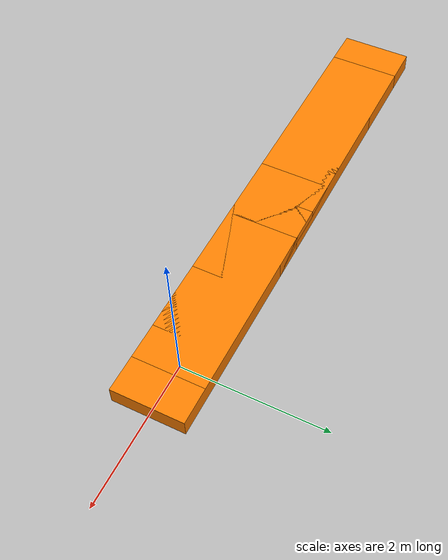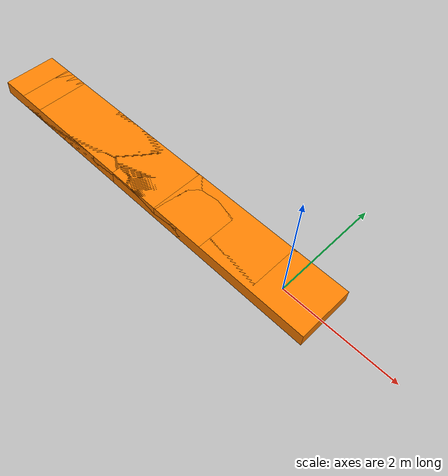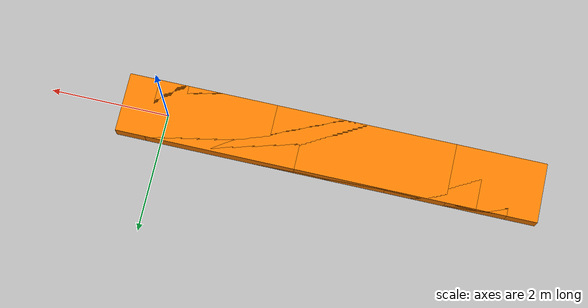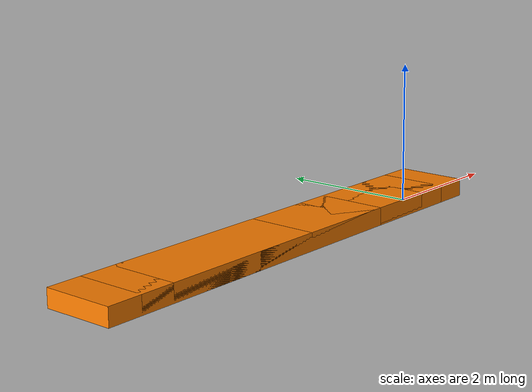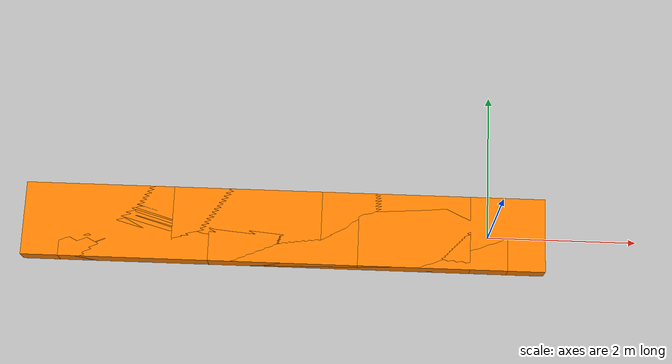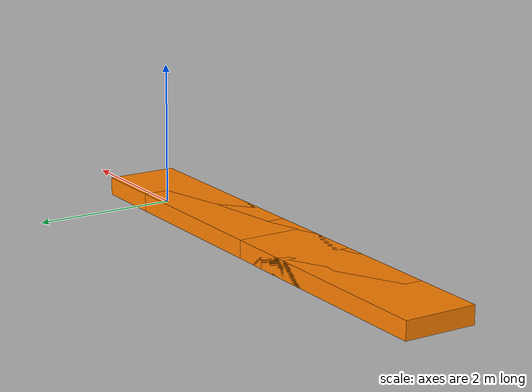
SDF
<sdf version="1.6">
 <world name="waves">
  <plugin filename="gz-sim-physics-system" name="gz::sim::systems::Physics"/>
  <plugin filename="gz-sim-sensors-system" name="gz::sim::systems::Sensors">
   <render_engine>ogre2</render_engine>
   <background_color>0.8 0.8 0.8</background_color>
  </plugin>
  <plugin filename="gz-sim-scene-broadcaster-system" name="gz::sim::systems::SceneBroadcaster"/>
  <plugin filename="gz-sim-user-commands-system" name="gz::sim::systems::UserCommands"/>
  <plugin filename="gz-sim-imu-system" name="gz::sim::systems::Imu"/>
  <plugin filename="gz-sim-navsat-system" name="gz::sim::systems::NavSat"/>
  <spherical_coordinates>
   <surface_model>EARTH_WGS84</surface_model>
   <world_frame_orientation>ENU</world_frame_orientation>
   <latitude_deg>-22.986687</latitude_deg>
   <longitude_deg>-43.202501</longitude_deg>
   <elevation>0</elevation>
   <heading_deg>0</heading_deg>
  </spherical_coordinates>
  <scene><ambient>1.0 1.0 1.0</ambient><background>0.8 0.8 0.8</background></scene>
  <light type="directional" name="sun">
   <pose>0 0 10 0 0 0</pose>
   <diffuse>0.8 0.8 0.8 1</diffuse>
   <specular>0.6 0.6 0.6 1</specular>
   <direction>-0.5 0.1 -0.9</direction>
  </light>
  <include><uri>model://waves</uri></include>
  <include><pose>-0.5 0 0 0 0 0</pose><uri>model://barrage_buoy</uri><name>barrage_buoy_1</name></include>
  <joint name="blueboat_to_barragebuoy1_joint" type="fixed">
   <parent>blueboat::base_link</parent>
   <child>barrage_buoy_1::base_link</child>
  </joint>
  <include><pose>-1.0 0 0 0 0 0</pose><uri>model://barrage_buoy</uri><name>barrage_buoy_2</name></include>
  <joint name="barragebuoy1_to_barragebuoy2_joint" type="universal">
   <parent>barrage_buoy_1::base_link</parent>
   <child>barrage_buoy_2::base_link</child>
   <axis>
    <xyz>0 1 0</xyz>
    <limit><lower>-1.5</lower><upper>1.5</upper></limit>
    <dynamics><damping>0.05</damping></dynamics>
   </axis>
   <axis2>
    <xyz>1 0 0</xyz>
    <limit><lower>-1.5</lower><upper>1.5</upper></limit>
    <dynamics><damping>0.05</damping></dynamics>
   </axis2>
  </joint>
  <include><pose>-1.5 0 0 0 0 0</pose><uri>model://barrage_buoy</uri><name>barrage_buoy_3</name></include>
  <joint name="barragebuoy2_to_barragebuoy3_joint" type="universal">
   <parent>barrage_buoy_2::base_link</parent>
   <child>barrage_buoy_3::base_link</child>
   <axis>
    <xyz>0 1 0</xyz>
    <limit><lower>-1.5</lower><upper>1.5</upper></limit>
    <dynamics><damping>0.05</damping></dynamics>
   </axis>
   <axis2>
    <xyz>1 0 0</xyz>
    <limit><lower>-1.5</lower><upper>1.5</upper></limit>
    <dynamics><damping>0.05</damping></dynamics>
   </axis2>
  </joint>
  <include><pose>-2.0 0 0 0 0 0</pose><uri>model://barrage_buoy</uri><name>barrage_buoy_4</name></include>
  <joint name="barragebuoy3_to_barragebuoy4_joint" type="universal">
   <parent>barrage_buoy_3::base_link</parent>
   <child>barrage_buoy_4::base_link</child>
   <axis>
    <xyz>0 1 0</xyz>
    <limit><lower>-1.5</lower><upper>1.5</upper></limit>
    <dynamics><damping>0.05</damping></dynamics>
   </axis>
   <axis2>
    <xyz>1 0 0</xyz>
    <limit><lower>-1.5</lower><upper>1.5</upper></limit>
    <dynamics><damping>0.05</damping></dynamics>
   </axis2>
  </joint>
  <include><pose>-2.5 0 0 0 0 0</pose><uri>model://barrage_buoy</uri><name>barrage_buoy_5</name></include>
  <joint name="barragebuoy4_to_barragebuoy5_joint" type="universal">
   <parent>barrage_buoy_4::base_link</parent>
   <child>barrage_buoy_5::base_link</child>
   <axis>
    <xyz>0 1 0</xyz>
    <limit><lower>-1.5</lower><upper>1.5</upper></limit>
    <dynamics><damping>0.05</damping></dynamics>
   </axis>
   <axis2>
    <xyz>1 0 0</xyz>
    <limit><lower>-1.5</lower><upper>1.5</upper></limit>
    <dynamics><damping>0.05</damping></dynamics>
   </axis2>
  </joint>
  <include><pose>-3.0 0 0 0 0 0</pose><uri>model://barrage_buoy</uri><name>barrage_buoy_6</name></include>
  <joint name="barragebuoy5_to_barragebuoy6_joint" type="universal">
   <parent>barrage_buoy_5::base_link</parent>
   <child>barrage_buoy_6::base_link</child>
   <axis>
    <xyz>0 1 0</xyz>
    <limit><lower>-1.5</lower><upper>1.5</upper></limit>
    <dynamics><damping>0.05</damping></dynamics>
   </axis>
   <axis2>
    <xyz>1 0 0</xyz>
    <limit><lower>-1.5</lower><upper>1.5</upper></limit>
    <dynamics><damping>0.05</damping></dynamics>
   </axis2>
  </joint>
  <include><pose>-3.5 0 0 0 0 0</pose><uri>model://barrage_buoy</uri><name>barrage_buoy_7</name></include>
  <joint name="barragebuoy6_to_barragebuoy7_joint" type="universal">
   <parent>barrage_buoy_6::base_link</parent>
   <child>barrage_buoy_7::base_link</child>
   <axis>
    <xyz>0 1 0</xyz>
    <limit><lower>-1.5</lower><upper>1.5</upper></limit>
    <dynamics><damping>0.05</damping></dynamics>
   </axis>
   <axis2>
    <xyz>1 0 0</xyz>
    <limit><lower>-1.5</lower><upper>1.5</upper></limit>
    <dynamics><damping>0.05</damping></dynamics>
   </axis2>
  </joint>
  <include><pose>-4.0 0 0 0 0 0</pose><uri>model://barrage_buoy</uri><name>barrage_buoy_8</name></include>
  <joint name="barragebuoy7_to_barragebuoy8_joint" type="universal">
   <parent>barrage_buoy_7::base_link</parent>
   <child>barrage_buoy_8::base_link</child>
   <axis>
    <xyz>0 1 0</xyz>
    <limit><lower>-1.5</lower><upper>1.5</upper></limit>
    <dynamics><damping>0.05</damping></dynamics>
   </axis>
   <axis2>
    <xyz>1 0 0</xyz>
    <limit><lower>-1.5</lower><upper>1.5</upper></limit>
    <dynamics><damping>0.05</damping></dynamics>
   </axis2>
  </joint>
  <include><pose>-4.5 0 0 0 0 0</pose><uri>model://barrage_buoy</uri><name>barrage_buoy_9</name></include>
  <joint name="barragebuoy8_to_barragebuoy9_joint" type="universal">
   <parent>barrage_buoy_8::base_link</parent>
   <child>barrage_buoy_9::base_link</child>
   <axis>
    <xyz>0 1 0</xyz>
    <limit><lower>-1.5</lower><upper>1.5</upper></limit>
    <dynamics><damping>0.05</damping></dynamics>
   </axis>
   <axis2>
    <xyz>1 0 0</xyz>
    <limit><lower>-1.5</lower><upper>1.5</upper></limit>
    <dynamics><damping>0.05</damping></dynamics>
   </axis2>
  </joint>
  <include><pose>-5.0 0 0 0 0 0</pose><uri>model://barrage_buoy</uri><name>barrage_buoy_10</name></include>
  <joint name="barragebuoy9_to_barragebuoy10_joint" type="universal">
   <parent>barrage_buoy_9::base_link</parent>
   <child>barrage_buoy_10::base_link</child>
   <axis>
    <xyz>0 1 0</xyz>
    <limit><lower>-1.5</lower><upper>1.5</upper></limit>
    <dynamics><damping>0.05</damping></dynamics>
   </axis>
   <axis2>
    <xyz>1 0 0</xyz>
    <limit><lower>-1.5</lower><upper>1.5</upper></limit>
    <dynamics><damping>0.05</damping></dynamics>
   </axis2>
  </joint>
  <include><pose>-5.5 0 -0.3 0 0 0</pose><uri>model://bluerov2_heavy</uri><name>bluerov2_heavy</name></include>
  <joint name="barragebuoy10_to_bluerov2_joint" type="universal">
   <parent>barrage_buoy_10::base_link</parent>
   <child>bluerov2_heavy::base_link</child>
   <pose>0 0 -0.3 0 0 0</pose>
   <axis>
    <xyz>0 1 0</xyz>
    <limit><lower>-1.5</lower><upper>1.5</upper></limit>
    <dynamics><damping>0.05</damping></dynamics>
   </axis>
   <axis2>
    <xyz>1 0 0</xyz>
    <limit><lower>-1.5</lower><upper>1.5</upper></limit>
    <dynamics><damping>0.05</damping></dynamics>
   </axis2>
  </joint>
 </world>
</sdf>

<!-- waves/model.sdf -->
<sdf version="1.6">
  <model name="waves">
    <static>true</static>
    <link name="link">
      <visual name= "wave_visual">
        <geometry>
          <mesh>
            <uri>meshes/mesh.dae</uri>
          </mesh>
        </geometry>
        <plugin
            filename="libWaveVisual.so"
            name="ignition::gazebo::systems::WaveVisual">
          <shader>
            <vertex>materials/programs/GerstnerWaves_vs_330.glsl</vertex>
            <fragment>materials/programs/GerstnerWaves_fs_330.glsl</fragment>
          </shader>
          <wavefield>
            <size>1000 1000</size>
            <cell_count>50 50</cell_count>
            <wave>
              <model>PMS</model>
              <period>5</period>
              <number>3</number>
              <scale>5.1</scale>
              <gain>0.3</gain>
              <direction>1 0</direction>
              <angle>0.4</angle>
              <tau>2.0</tau>
              <amplitude>0.0</amplitude>
              <steepness>0.0</steepness>
            </wave>
          </wavefield>
        </plugin>
        <visibility_flags>8</visibility_flags>
      </visual>
    </link>
  </model>
</sdf>

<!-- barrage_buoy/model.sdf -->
<sdf version="1.6">
  <model name="barrage_buoy">
    <plugin
        filename="wave-hydrodynamics-system"
        name="gz::sim::systems::Hydrodynamics">
    </plugin>
    <link name="base_link">
      <visual name="visual">
        <geometry>
          <box>
            <size>2.5 1 0.5</size>
          </box>
        </geometry>
        <material>
          <ambient>1.0 0.5 0.0 1.0</ambient>
          <diffuse>1.0 0.5 0.0 1.0</diffuse>
          <specular>0.8 0.8 0.8 1.0</specular>
        </material>
      </visual>
      <collision name="collision">
        <geometry>
          <box>
            <size>2.5 1 0.5</size>
          </box>
        </geometry>
      </collision>
      <inertial>
        <mass>312.5</mass>
        <inertia>
          <ixx>32.5</ixx>
          <ixy>0.0</ixy>
          <ixz>0.0</ixz>
          <iyy>169.3</iyy>
          <iyz>0.0</iyz>
          <izz>188.8</izz>
        </inertia>
      </inertial>
    </link>
  </model>
</sdf>

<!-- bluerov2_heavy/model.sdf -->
<sdf version="1.6">
  <model name="bluerov2">
    <link name="base_link">
      <collision name="base_link_collision">
        <geometry>
          <mesh>
            <uri>model://bluerov2_heavy/meshes/bluerov2_heavy.dae</uri>
            <scale>0.025 0.025 0.025</scale>
          </mesh>
        </geometry>
      </collision>
      <sensor name="ais_sensor" type="custom" gz:type="ais">
        <update_rate>1</update_rate>
        <noise_sigma>0.01</noise_sigma>
        <noise_amplitude>0.01</noise_amplitude>
      </sensor>
    </link>
  </model>
</sdf>
